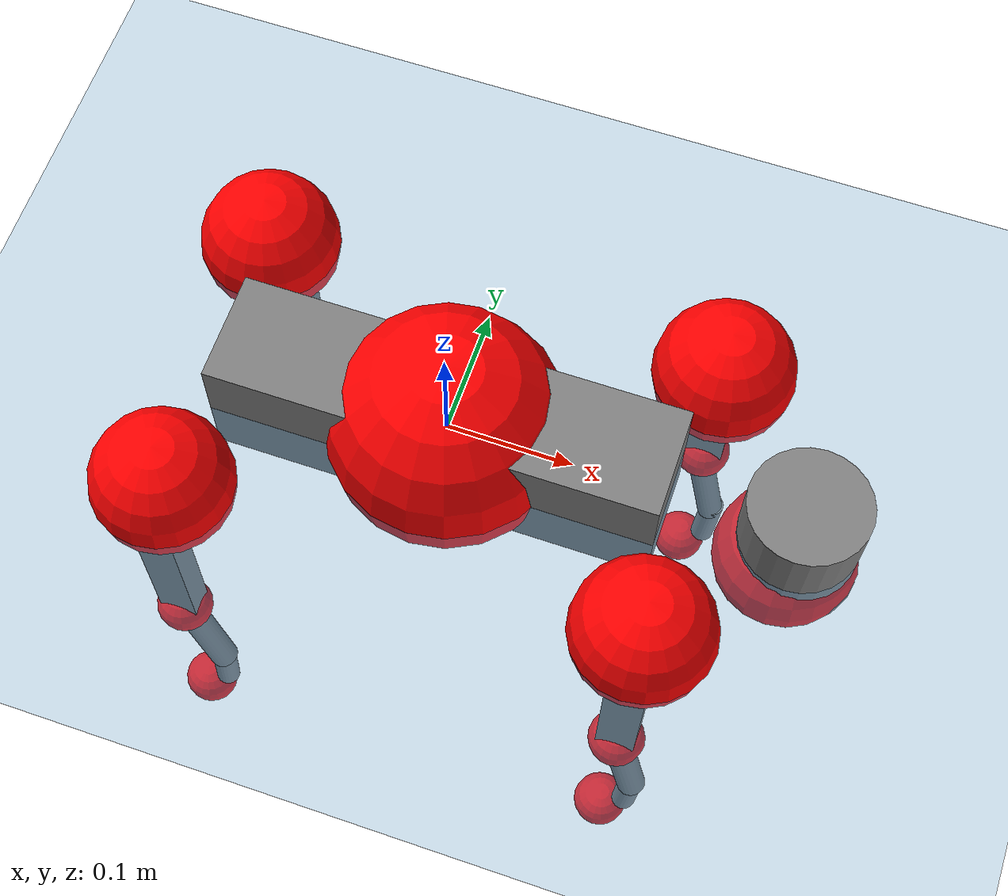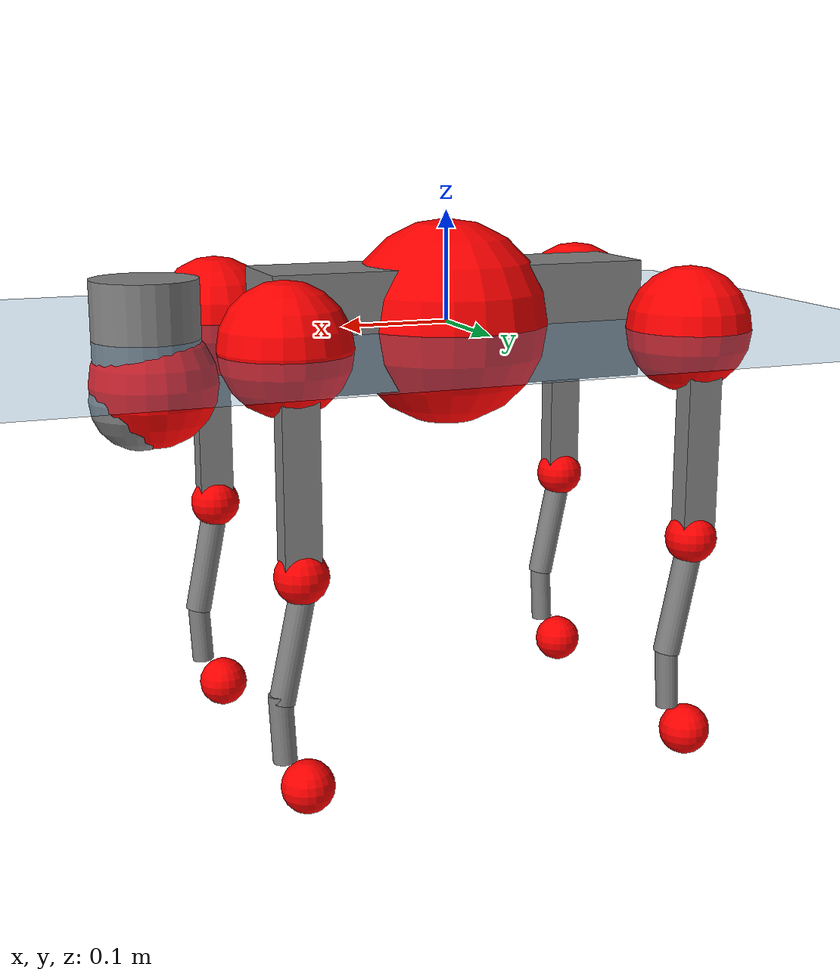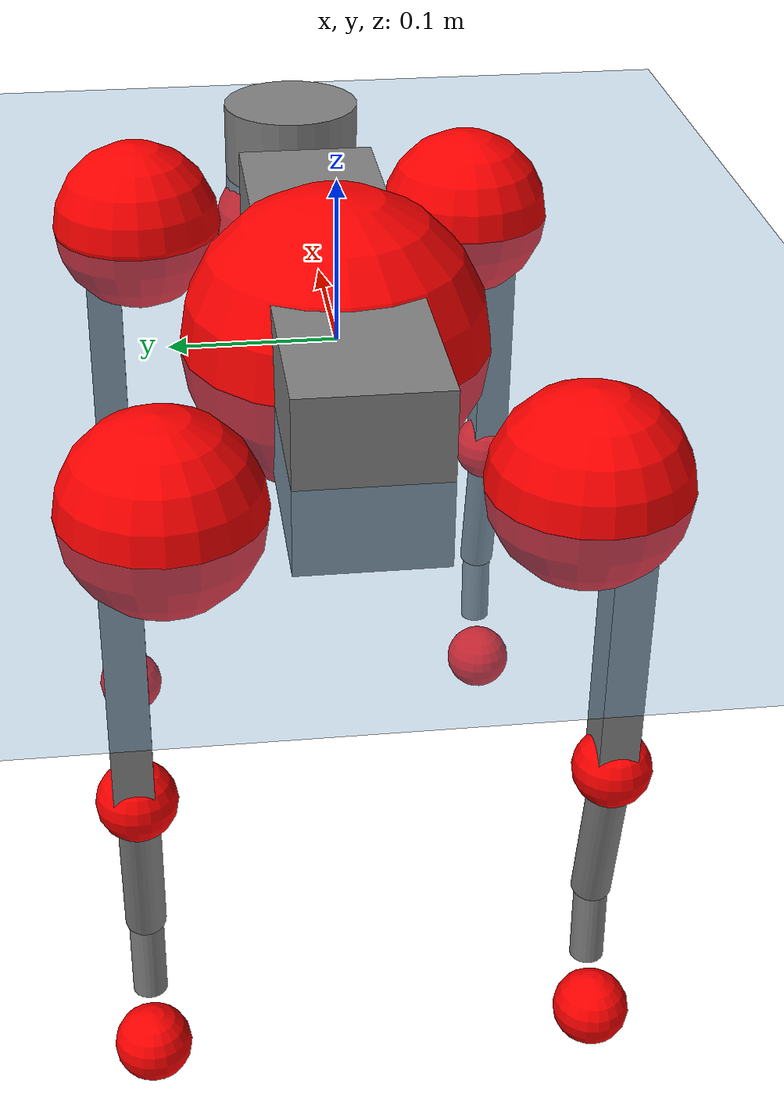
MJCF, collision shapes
<mujoco model="go2">
  <compiler angle="radian" assetdir="assets" balanceinertia="true" inertiafromgeom="false"/>

  <option timestep="0.005" density="1.2" viscosity="2e-05"/>

  <size nkey="1"/>

  <visual>
    <quality shadowsize="8192"/>
    <map shadowclip="0.5"/>
  </visual>

  <default>
    <default class="/">
      <geom contype="0" conaffinity="0" group="1" solref="-1000 -80"/>
      <site size="0.01 0.005 0.005" group="5"/>
      <general forcelimited="true" biastype="affine" gainprm="20" biasprm="0 -20 -0.5"/>
      <default class="go2">
        <joint armature="0.01" damping="0.01" frictionloss="0.2"/>
        <geom condim="1" margin="0.001"/>
        <default class="visual">
          <geom type="mesh" group="2"/>
        </default>
        <default class="collision">
          <geom group="3"/>
          <default class="foot">
            <geom size="0.022 0 0" condim="6" priority="1" friction="0.8 0.02 0.01" solimp="0.015 1 0.022"/>
          </default>
        </default>
        <default class="reward_collision_sphere">
          <geom group="5" rgba="1 0 0 1"/>
        </default>
      </default>
    </default>
  </default>

  <asset>
    <texture type="skybox" colorspace="auto" name="//unnamed_texture_0" builtin="gradient" rgb1="0.95 0.95 0.95" rgb2="0.95 0.95 0.95" width="100" height="600"/>
    <texture type="2d" colorspace="auto" name="texplane" builtin="checker" rgb1="0.345 0.575 0.748" rgb2="0.345 0.575 0.748" markrgb="1 1 1" width="512" height="512"/>
    <material name="MatPlane" class="/" texture="texplane" texuniform="true" texrepeat="2 2" specular="0.9"/>
    <material name="metal" class="/" rgba="0.9 0.95 0.95 1"/>
    <material name="black" class="/" rgba="0 0 0 1"/>
    <material name="white" class="/"/>
    <material name="gray" class="/" rgba="0.671705 0.692426 0.77427 1"/>
    <mesh name="base_0" class="/" file="base_0.obj"/>
    <mesh name="base_1" class="/" file="base_1.obj"/>
    <mesh name="base_2" class="/" file="base_2.obj"/>
    <mesh name="base_3" class="/" file="base_3.obj"/>
    <mesh name="base_4" class="/" file="base_4.obj"/>
    <mesh name="hip_0" class="/" file="hip_0.obj"/>
    <mesh name="hip_1" class="/" file="hip_1.obj"/>
    <mesh name="thigh_0" class="/" file="thigh_0.obj"/>
    <mesh name="thigh_1" class="/" file="thigh_1.obj"/>
    <mesh name="thigh_mirror_0" class="/" file="thigh_mirror_0.obj"/>
    <mesh name="thigh_mirror_1" class="/" file="thigh_mirror_1.obj"/>
    <mesh name="calf_0" class="/" file="calf_0.obj"/>
    <mesh name="calf_1" class="/" file="calf_1.obj"/>
    <mesh name="calf_mirror_0" class="/" file="calf_mirror_0.obj"/>
    <mesh name="calf_mirror_1" class="/" file="calf_mirror_1.obj"/>
    <mesh name="foot" class="/" file="foot.obj"/>
  </asset>

  <worldbody>
    <geom name="floor" class="/" size="100 100 0.125" type="plane" group="0" material="MatPlane"/>
    <light name="toplight_shadow" class="/" pos="0 0 5" dir="0.0990148 0.0990148 -0.990148" type="directional" ambient="0.04 0.04 0.04" diffuse="0.55 0.55 0.55" specular="0.12 0.12 0.12"/>
    <light name="toplight_fill" class="/" pos="0 0 5" dir="0.0990148 0.0990148 -0.990148" type="directional" castshadow="false" ambient="0.04 0.04 0.04" diffuse="0.3 0.3 0.3" specular="0.08 0.08 0.08"/>
    <body name="trunk" childclass="go2" pos="0.000148965 0.000657043 -0.000279994" quat="1 1.82106e-06 3.28228e-06 4.9203e-06">
      <inertial pos="0.020316 0.000411523 -0.00486518" quat="0.00014585 0.710099 -0.00158775 0.7041" mass="5.70116" diaginertia="0.0917752 0.0798073 0.012817"/>
      <joint name="//unnamed_joint_0" type="free" armature="0" damping="0" frictionloss="0"/>
      <geom name="//unnamed_geom_1" class="visual" material="black" mesh="base_0"/>
      <geom name="//unnamed_geom_2" class="visual" material="black" mesh="base_1"/>
      <geom name="//unnamed_geom_3" class="visual" material="black" mesh="base_2"/>
      <geom name="//unnamed_geom_4" class="visual" material="white" mesh="base_3"/>
      <geom name="//unnamed_geom_5" class="visual" material="gray" mesh="base_4"/>
      <geom name="trunk_1" class="collision" size="0.175781 0.0436882 0.0532669" type="box"/>
      <geom name="trunk_2" class="collision" size="0.0467253 0.0420528" pos="0.275787 0 0.00878462" type="cylinder"/>
      <geom name="trunk_3" class="collision" size="0.0439218" pos="0.283528 0 -0.0527077"/>
      <geom name="//unnamed_geom_9" class="reward_collision_sphere" size="0.0934506"/>
      <geom name="//unnamed_geom_10" class="reward_collision_sphere" size="0.0560704" pos="0.270948 0 -0.0395308"/>
      <site name="imu" pos="-0.0284079 -0.00419823 0.0404813" size="0.00934506"/>
      <camera name="track" pos="0 -1.91477 0" quat="0.707107 0.707107 0 0" mode="trackcom"/>
      <camera name="ego_camera" pos="0.301914 0 0.0395308" quat="-0.5 -0.5 0.5 0.5"/>
      <body name="FL_hip" pos="0.18564 0.0456898 0.00203442" quat="1 7.55483e-05 0.000163766 -9.26976e-05">
        <inertial pos="-0.0053223 0.00203524 -0.000950228" quat="0.497705 0.498583 0.505444 0.498228" mass="0.556873" diaginertia="0.000749701 0.000485677 0.000252312"/>
        <joint name="FL_hip_joint" pos="0 0 0" axis="0.999992 0.00384488 -0.0011756" stiffness="0.00365715" range="-1.02945 1.03524" armature="0.00948627" damping="0.00544815" frictionloss="0.178717"/>
        <geom name="//unnamed_geom_11" class="visual" material="metal" mesh="hip_0"/>
        <geom name="//unnamed_geom_12" class="visual" material="gray" mesh="hip_1"/>
        <geom name="//unnamed_geom_13" class="collision" size="0.0429873 0.0186901" pos="0 0.0765908 0" quat="0.707107 0.707107 0 0" type="cylinder"/>
        <geom name="//unnamed_geom_14" class="reward_collision_sphere" size="0.0560704" pos="0 0.067017 0"/>
        <body name="FL_thigh" pos="-0.000959954 0.0920772 0.00150932" quat="1 0.000465633 -5.93231e-05 7.52838e-05">
          <inertial pos="-0.00481584 -0.0220291 -0.0282604" quat="0.829707 0.0842065 -0.0190631 0.551482" mass="0.939546" diaginertia="0.0050232 0.0046893 0.000457126"/>
          <joint name="FL_thigh_joint" pos="0 0 0" axis="-0.000866209 0.999998 0.00175932" stiffness="0.00528245" range="-1.58213 3.498" armature="0.00911515" damping="0.00950141" frictionloss="0.186455"/>
          <geom name="//unnamed_geom_15" class="visual" material="metal" mesh="thigh_0"/>
          <geom name="//unnamed_geom_16" class="visual" material="gray" mesh="thigh_1"/>
          <geom name="//unnamed_geom_17" class="collision" size="0.0995249 0.0114477 0.0158866" pos="0 0 -0.0935562" quat="0.707107 0 0.707107 0" type="box"/>
          <body name="FL_calf" pos="-0.00133608 -0.000991984 -0.187018" quat="1 -0.000316912 -0.000133062 -0.000160145">
            <inertial pos="0.00530366 -0.000534593 -0.124484" quat="0.710302 0.00108592 -0.00451413 0.703882" mass="0.196696" diaginertia="0.00127314 0.00118018 2.7584e-05"/>
            <joint name="FL_calf_joint" pos="0 0 0" axis="-0.00427777 0.999985 0.00333158" stiffness="0.000902575" range="-2.73697 -0.837822" armature="0.00978184" damping="0.00132318" frictionloss="0.186263"/>
            <geom name="//unnamed_geom_18" class="visual" material="gray" mesh="calf_0"/>
            <geom name="//unnamed_geom_19" class="visual" material="black" mesh="calf_1"/>
            <geom name="FL_calf0" class="collision" size="0.0112141 0.0560704" pos="0.00774138 0 -0.0527077" quat="0.994493 0 -0.104807 0" type="cylinder"/>
            <geom name="//unnamed_geom_21" class="collision" size="0.0102796 0.0303715" pos="0.0193535 0 -0.130012" quat="0.999688 0 0.0249974 0" type="cylinder"/>
            <geom name="//unnamed_geom_22" class="visual" pos="0 0 -0.187112" quat="1 0 0 0" material="black" mesh="foot"/>
            <geom name="FL_foot" class="foot" size="0.0182455" pos="-0.00193535 0 -0.187112"/>
            <geom name="//unnamed_geom_24" class="reward_collision_sphere" size="0.0233627"/>
            <geom name="//unnamed_geom_25" class="reward_collision_sphere" size="0.0233627" pos="-0.00193535 0 -0.187112"/>
            <site name="FL_foot" class="foot" pos="-0.00193535 0 -0.187112" size="0.00934506"/>
          </body>
        </body>
      </body>
      <body name="FR_hip" pos="0.188224 -0.0429981 1.59686e-06" quat="1 1.18217e-05 7.82222e-05 8.53863e-05">
        <inertial pos="-0.00533338 -0.00150734 -7.95034e-05" quat="0.498302 0.506422 0.498477 0.496742" mass="0.552538" diaginertia="0.000744652 0.000471942 0.000248375"/>
        <joint name="FR_hip_joint" pos="0 0 0" axis="0.999982 -0.00506137 0.00318274" stiffness="0.0053418" range="-1.0503 1.05586" armature="0.00949587" damping="0.0157048" frictionloss="0.187311"/>
        <geom name="//unnamed_geom_26" class="visual" pos="0 6.87548e-10 2.94903e-08" quat="4.63268e-05 1 0 0" material="metal" mesh="hip_0"/>
        <geom name="//unnamed_geom_27" class="visual" pos="0 1.1146e-09 -7.29409e-08" quat="4.63268e-05 1 0 0" material="gray" mesh="hip_1"/>
        <geom name="//unnamed_geom_28" class="collision" size="0.0429873 0.0186901" pos="0 -0.0765908 0" quat="0.707107 0.707107 0 0" type="cylinder"/>
        <geom name="//unnamed_geom_29" class="reward_collision_sphere" size="0.0560704" pos="0 -0.067017 0"/>
        <body name="FR_thigh" pos="0.00112246 -0.0905087 0.000551813" quat="1 -5.14188e-06 -7.56785e-05 0.000313714">
          <inertial pos="-0.00382924 0.0208183 -0.028395" quat="0.553637 -0.0225396 0.0873321 0.827859" mass="0.925479" diaginertia="0.00500227 0.00467745 0.000458109"/>
          <joint name="FR_thigh_joint" pos="0 0 0" axis="-0.000368387 -1 -0.000106235" range="-3.50001 1.57085" armature="0.00925436" damping="0.0159286" frictionloss="0.187164"/>
          <geom name="//unnamed_geom_30" class="visual" material="metal" mesh="thigh_mirror_0"/>
          <geom name="//unnamed_geom_31" class="visual" material="gray" mesh="thigh_mirror_1"/>
          <geom name="//unnamed_geom_32" class="collision" size="0.0995249 0.0114477 0.0158866" pos="0 0 -0.0935562" quat="0.707107 0 0.707107 0" type="box"/>
          <body name="FR_calf" pos="-0.00021622 -0.000117965 -0.186003" quat="1 -5.41989e-05 -0.000100706 -2.49281e-05">
            <inertial pos="0.00563743 0.000778982 -0.125404" quat="0.700496 -0.00420057 0.00012511 0.713644" mass="0.196114" diaginertia="0.00127123 0.00117702 2.78593e-05"/>
            <joint name="FR_calf_joint" pos="0 0 0" axis="-0.00432939 -0.999989 0.00196444" range="0.841655 2.71697" armature="0.00944803" damping="0.0117266" frictionloss="0.189814"/>
            <geom name="//unnamed_geom_33" class="visual" material="gray" mesh="calf_mirror_0"/>
            <geom name="//unnamed_geom_34" class="visual" material="black" mesh="calf_mirror_1"/>
            <geom name="FR_calf0" class="collision" size="0.0121486 0.0560704" pos="0.00967673 0 -0.0527077" quat="0.995004 0 -0.0998334 0" type="cylinder"/>
            <geom name="//unnamed_geom_36" class="collision" size="0.0102796 0.0303715" pos="0.0193535 0 -0.130012" quat="0.999688 0 0.0249974 0" type="cylinder"/>
            <geom name="//unnamed_geom_37" class="visual" pos="0 0 -0.187112" quat="1 0 0 0" material="black" mesh="foot"/>
            <geom name="FR_foot" class="foot" size="0.0222833" pos="-0.00193535 0 -0.187112"/>
            <geom name="//unnamed_geom_39" class="reward_collision_sphere" size="0.0233627"/>
            <geom name="//unnamed_geom_40" class="reward_collision_sphere" size="0.0233627" pos="-0.00193535 0 -0.187112"/>
            <site name="FR_foot" class="foot" pos="-0.00193535 0 -0.187112" size="0.00934506"/>
          </body>
        </body>
      </body>
      <body name="RL_hip" pos="-0.187679 0.0442031 -0.00106914" quat="1 -0.000293684 -4.42375e-05 -0.00010288">
        <inertial pos="0.00509806 0.00275363 -0.000787079" quat="0.50663 0.498599 0.496691 0.49802" mass="0.553408" diaginertia="0.000747269 0.000477686 0.000250431"/>
        <joint name="RL_hip_joint" pos="0 0 0" axis="-0.999803 -0.0151365 -0.0128519" stiffness="0.000866665" range="-1.03952 1.05568" armature="0.00935304" damping="0.014366" frictionloss="0.191031"/>
        <geom name="//unnamed_geom_41" class="visual" pos="-7.77169e-10 0 -1.52343e-07" quat="4.63268e-05 0 1 0" material="metal" mesh="hip_0"/>
        <geom name="//unnamed_geom_42" class="visual" pos="-1.25988e-09 0 -1.35107e-07" quat="4.63268e-05 0 1 0" material="gray" mesh="hip_1"/>
        <geom name="//unnamed_geom_43" class="collision" size="0.0429873 0.0186901" pos="0 0.0765908 0" quat="0.707107 0.707107 0 0" type="cylinder"/>
        <geom name="//unnamed_geom_44" class="reward_collision_sphere" size="0.0560704" pos="0 0.067017 0"/>
        <body name="RL_thigh" pos="0.000609053 0.0910383 -0.000865715" quat="1 -0.000241566 -2.16444e-05 6.91555e-05">
          <inertial pos="-0.00346451 -0.0209102 -0.0289717" quat="0.830468 0.0851008 -0.0239242 0.550007" mass="0.949507" diaginertia="0.00501573 0.00467565 0.000460927"/>
          <joint name="RL_thigh_joint" pos="0 0 0" axis="-0.00215304 0.999997 0.00150002" range="-0.509174 4.52164" armature="0.0094023" damping="0.0100676" frictionloss="0.189565"/>
          <geom name="//unnamed_geom_45" class="visual" material="metal" mesh="thigh_0"/>
          <geom name="//unnamed_geom_46" class="visual" material="gray" mesh="thigh_1"/>
          <geom name="//unnamed_geom_47" class="collision" size="0.0995249 0.0114477 0.0158866" pos="0 0 -0.0935562" quat="0.707107 0 0.707107 0" type="box"/>
          <body name="RL_calf" pos="0.000809583 -0.0014773 -0.187271" quat="1 -0.000119063 1.57687e-05 -9.05027e-05">
            <inertial pos="0.0063657 -0.000599428 -0.124251" quat="0.710602 0.00101864 -0.00535846 0.703573" mass="0.192614" diaginertia="0.00124707 0.00116728 2.75103e-05"/>
            <joint name="RL_calf_joint" pos="0 0 0" axis="-0.0072114 0.999932 -0.00915703" range="-2.70967 -0.822395" armature="0.00937778" damping="0.000289645" frictionloss="0.185336"/>
            <geom name="//unnamed_geom_48" class="visual" material="gray" mesh="calf_0"/>
            <geom name="//unnamed_geom_49" class="visual" material="black" mesh="calf_1"/>
            <geom name="RL_calf0" class="collision" size="0.0121486 0.0560704" pos="0.00967673 0 -0.0527077" quat="0.995004 0 -0.0998334 0" type="cylinder"/>
            <geom name="//unnamed_geom_51" class="collision" size="0.0102796 0.0303715" pos="0.0193535 0 -0.130012" quat="0.999688 0 0.0249974 0" type="cylinder"/>
            <geom name="//unnamed_geom_52" class="visual" pos="0 0 -0.187112" quat="1 0 0 0" material="black" mesh="foot"/>
            <geom name="RL_foot" class="foot" size="0.017738" pos="-0.00193535 0 -0.187112"/>
            <geom name="//unnamed_geom_54" class="reward_collision_sphere" size="0.0233627"/>
            <geom name="//unnamed_geom_55" class="reward_collision_sphere" size="0.0233627" pos="-0.00193535 0 -0.187112"/>
            <site name="RL_foot" class="foot" pos="-0.00193535 0 -0.187112" size="0.00934506"/>
          </body>
        </body>
      </body>
      <body name="RR_hip" pos="-0.186372 -0.0451884 -0.000312948" quat="1 4.87339e-05 9.65289e-05 8.92487e-05">
        <inertial pos="0.00563063 -0.00219218 0.000935204" quat="0.498128 0.498532 0.499098 0.504218" mass="0.54671" diaginertia="0.000735409 0.000473838 0.000248913"/>
        <joint name="RR_hip_joint" pos="0 0 0" axis="-0.999999 -0.000609419 0.00114591" range="-1.04535 1.0467" armature="0.00931777" damping="0.00700761" frictionloss="0.185066"/>
        <geom name="//unnamed_geom_56" class="visual" pos="7.76813e-10 6.87548e-10 -1.81833e-07" quat="2.14617e-09 4.63268e-05 4.63268e-05 -1" material="metal" mesh="hip_0"/>
        <geom name="//unnamed_geom_57" class="visual" pos="1.26076e-09 1.1146e-09 -6.21657e-08" quat="2.14617e-09 4.63268e-05 4.63268e-05 -1" material="gray" mesh="hip_1"/>
        <geom name="//unnamed_geom_58" class="collision" size="0.0429873 0.0186901" pos="0 -0.0765908 0" quat="0.707107 0.707107 0 0" type="cylinder"/>
        <geom name="//unnamed_geom_59" class="reward_collision_sphere" size="0.0560704" pos="0 -0.067017 0"/>
        <body name="RR_thigh" pos="0.000402944 -0.0926043 -0.00171468" quat="1 -2.17854e-05 0.000109766 2.5131e-05">
          <inertial pos="-0.00335177 0.0214125 -0.0296718" quat="0.550078 -0.021683 0.0849894 0.830494" mass="0.948736" diaginertia="0.00508485 0.00475452 0.000464537"/>
          <joint name="RR_thigh_joint" pos="0 0 0" axis="-0.000621508 -0.999998 0.00194105" stiffness="0.00175157" range="-4.53536 0.506948" armature="0.0094749" damping="0.0131516" frictionloss="0.190359"/>
          <geom name="//unnamed_geom_60" class="visual" material="metal" mesh="thigh_mirror_0"/>
          <geom name="//unnamed_geom_61" class="visual" material="gray" mesh="thigh_mirror_1"/>
          <geom name="//unnamed_geom_62" class="collision" size="0.0995249 0.0114477 0.0158866" pos="0 0 -0.0935562" quat="0.707107 0 0.707107 0" type="box"/>
          <body name="RR_calf" pos="-0.000683769 -0.000474212 -0.187901" quat="1 0.000301502 4.32643e-05 0.000289548">
            <inertial pos="0.00692136 0.000695241 -0.124825" quat="0.703306 -0.00498691 0.00127305 0.710869" mass="0.198016" diaginertia="0.00126791 0.00117433 2.80106e-05"/>
            <joint name="RR_calf_joint" pos="0 0 0" axis="-0.000110342 -0.999996 -0.00264859" stiffness="0.00165316" range="0.850234 2.73014" armature="0.00931934" damping="0.0106527" frictionloss="0.18716"/>
            <geom name="//unnamed_geom_63" class="visual" material="gray" mesh="calf_mirror_0"/>
            <geom name="//unnamed_geom_64" class="visual" material="black" mesh="calf_mirror_1"/>
            <geom name="RR_calf0" class="collision" size="0.0121486 0.0560704" pos="0.00967673 0 -0.0527077" quat="0.995004 0 -0.0998334 0" type="cylinder"/>
            <geom name="//unnamed_geom_66" class="collision" size="0.0102796 0.0303715" pos="0.0193535 0 -0.130012" quat="0.999688 0 0.0249974 0" type="cylinder"/>
            <geom name="//unnamed_geom_67" class="visual" pos="0 0 -0.187112" quat="1 0 0 0" material="black" mesh="foot"/>
            <geom name="RR_foot" class="foot" size="0.0215275" pos="-0.00193535 0 -0.187112"/>
            <geom name="//unnamed_geom_69" class="reward_collision_sphere" size="0.0233627"/>
            <geom name="//unnamed_geom_70" class="reward_collision_sphere" size="0.0233627" pos="-0.00193535 0 -0.187112"/>
            <site name="RR_foot" class="foot" pos="-0.00193535 0 -0.187112" size="0.00934506"/>
          </body>
        </body>
      </body>
    </body>
  </worldbody>

  <contact>
    <pair class="/" geom1="floor" geom2="FL_foot" name="//unnamed_contact_0"/>
    <pair class="/" geom1="floor" geom2="FR_foot" name="//unnamed_contact_1"/>
    <pair class="/" geom1="floor" geom2="RL_foot" name="//unnamed_contact_2"/>
    <pair class="/" geom1="floor" geom2="RR_foot" name="//unnamed_contact_3"/>
  </contact>

  <actuator>
    <general name="FL_hip" class="/" joint="FL_hip_joint" forcerange="-22.8137 22.8137" gainprm="18.9244" biasprm="0 -18.9244 -0.470792"/>
    <general name="FL_thigh" class="/" joint="FL_thigh_joint" forcerange="-22.9346 22.9346" gainprm="18.9244" biasprm="0 -18.9244 -0.470792"/>
    <general name="FL_calf" class="/" joint="FL_calf_joint" forcerange="-41.6428 41.6428" gainprm="18.9244" biasprm="0 -18.9244 -0.470792"/>
    <general name="FR_hip" class="/" joint="FR_hip_joint" forcerange="-22.3368 22.3368" gainprm="18.9244" biasprm="0 -18.9244 -0.470792"/>
    <general name="FR_thigh" class="/" joint="FR_thigh_joint" forcerange="-22.3699 22.3699" gainprm="18.9244" biasprm="0 -18.9244 -0.470792"/>
    <general name="FR_calf" class="/" joint="FR_calf_joint" forcerange="-40.9129 40.9129" gainprm="18.9244" biasprm="0 -18.9244 -0.470792"/>
    <general name="RL_hip" class="/" joint="RL_hip_joint" forcerange="-21.7378 21.7378" gainprm="18.9244" biasprm="0 -18.9244 -0.470792"/>
    <general name="RL_thigh" class="/" joint="RL_thigh_joint" forcerange="-22.3344 22.3344" gainprm="18.9244" biasprm="0 -18.9244 -0.470792"/>
    <general name="RL_calf" class="/" joint="RL_calf_joint" forcerange="-43.7138 43.7138" gainprm="18.9244" biasprm="0 -18.9244 -0.470792"/>
    <general name="RR_hip" class="/" joint="RR_hip_joint" forcerange="-21.6669 21.6669" gainprm="18.9244" biasprm="0 -18.9244 -0.470792"/>
    <general name="RR_thigh" class="/" joint="RR_thigh_joint" forcerange="-22.1131 22.1131" gainprm="18.9244" biasprm="0 -18.9244 -0.470792"/>
    <general name="RR_calf" class="/" joint="RR_calf_joint" forcerange="-42.3103 42.3103" gainprm="18.9244" biasprm="0 -18.9244 -0.470792"/>
  </actuator>

  <sensor>
    <gyro site="imu" name="imu_angular_velocity"/>
    <velocimeter site="imu" name="imu_linear_velocity"/>
    <framelinvel objtype="site" objname="FL_foot" name="FL_foot_global_linear_velocity"/>
    <framelinvel objtype="site" objname="FR_foot" name="FR_foot_global_linear_velocity"/>
    <framelinvel objtype="site" objname="RL_foot" name="RL_foot_global_linear_velocity"/>
    <framelinvel objtype="site" objname="RR_foot" name="RR_foot_global_linear_velocity"/>
  </sensor>

  <keyframe>
    <key name="home" qpos="0 0 0.325 1 0 0 0 0.1 0.8 -1.5 -0.1 -0.8 1.5 -0.1 0.8 -1.5 0.1 -0.8 1.5"/>
  </keyframe>
</mujoco>
